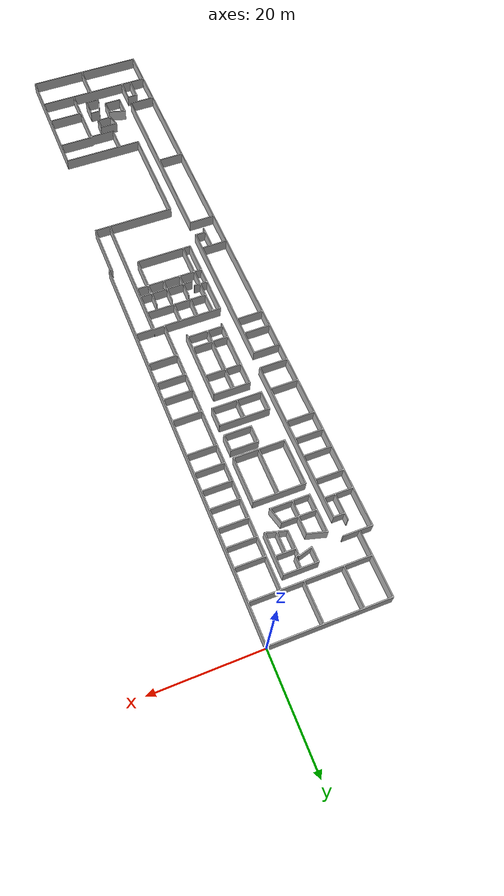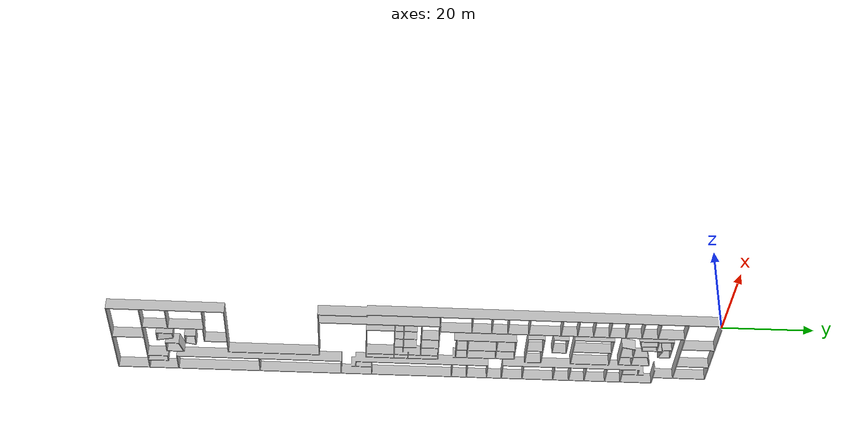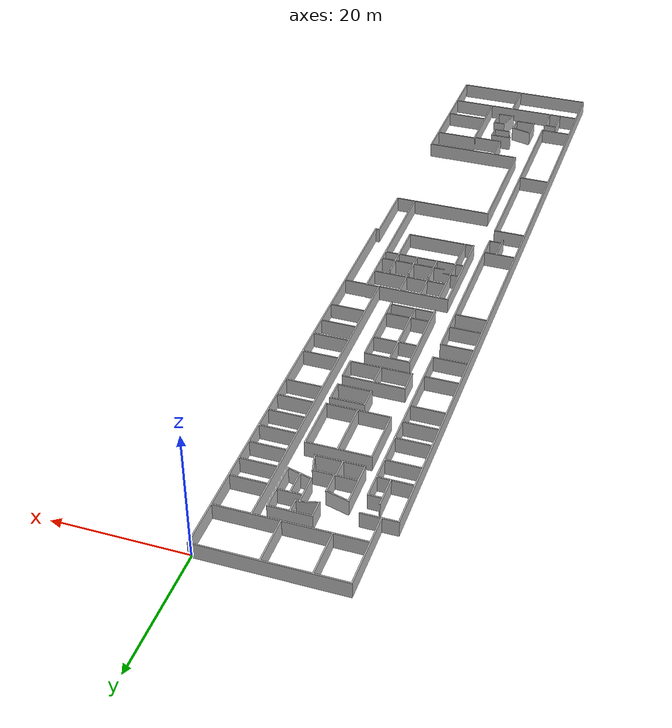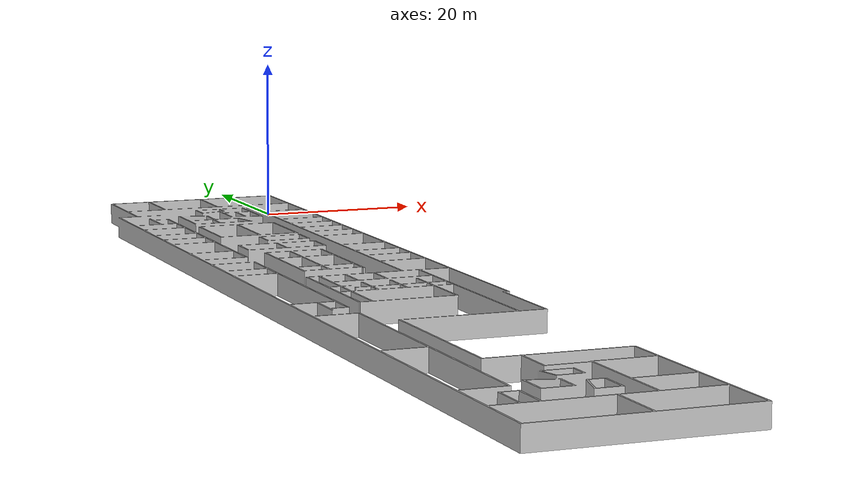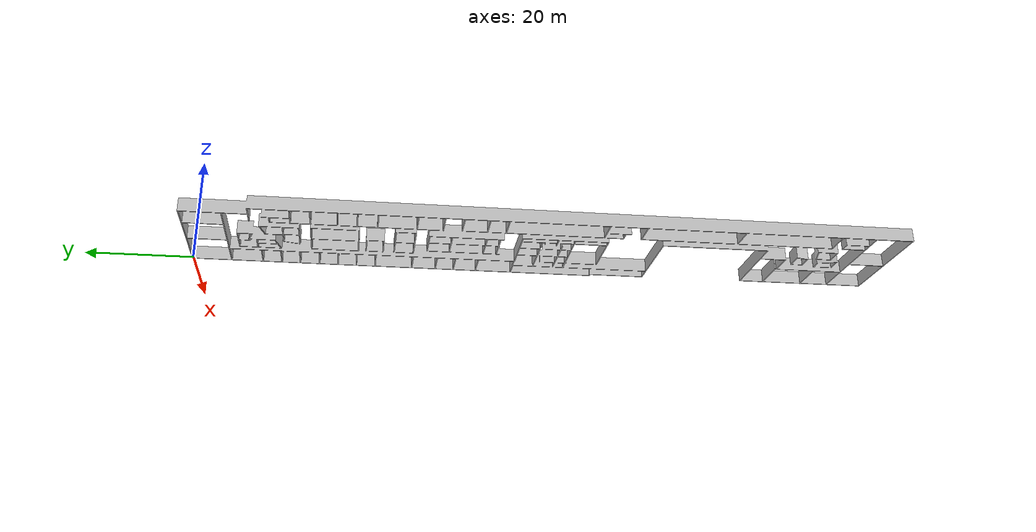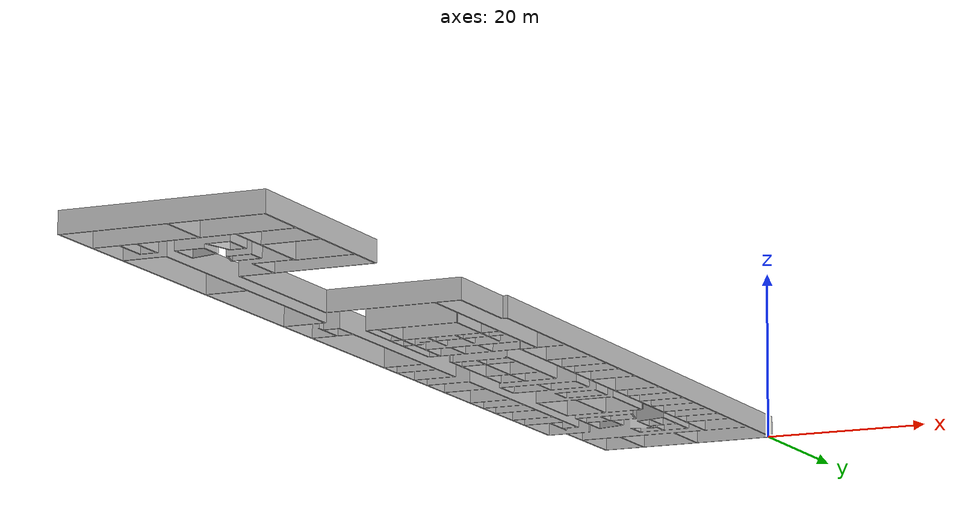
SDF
<?xml version="1.0"?>
<sdf version="1.8">
  <model name="campus_model">
    <static>true</static>

    <link name="walls">
      <visual name="visual">
        <geometry>
          <mesh>
            <uri>model://campus_model/meshes/walls_without_floor.obj</uri>
            <scale>1 1 1</scale>
          </mesh>
        </geometry>
      </visual>

      <collision name="collision">
        <geometry>
          <mesh>
            <uri>model://campus_model/meshes/walls_without_floor.obj</uri>
            <scale>1 1 1</scale>
          </mesh>
        </geometry>
      </collision>
    </link>
  </model>
</sdf>
